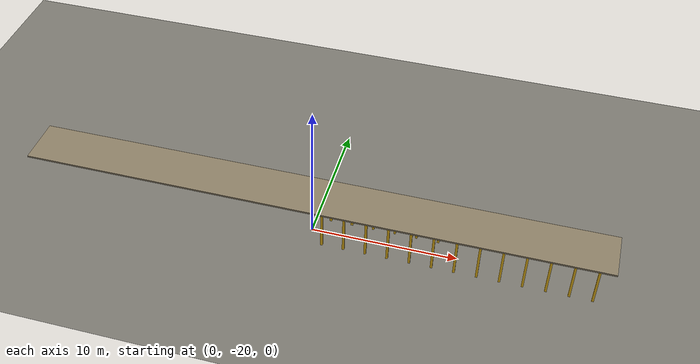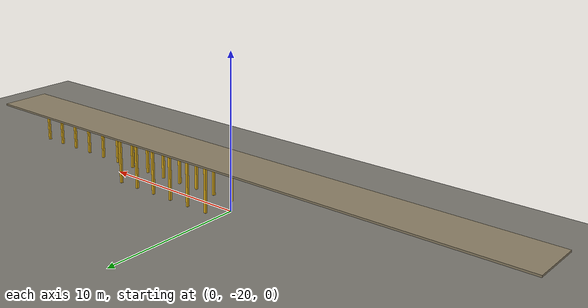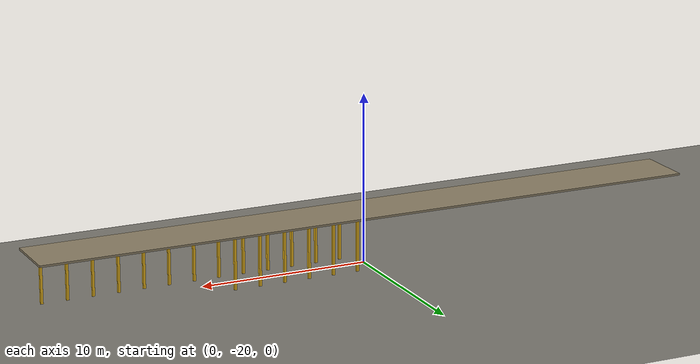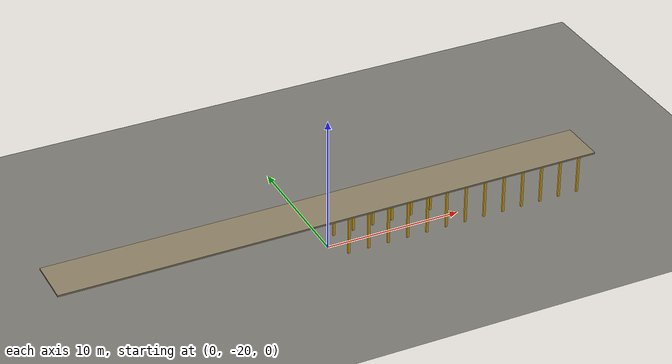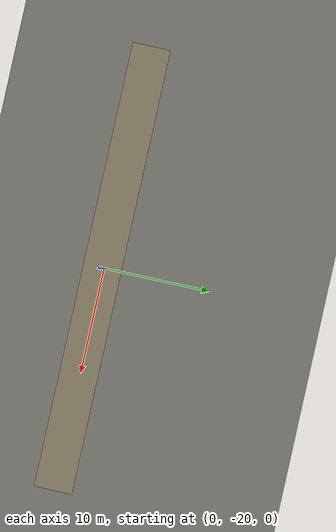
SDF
<sdf version="1.6">
 <world name="w4_structure_decks">
  <model name="ground_plane">
   <static>true</static>
   <link name="link">
    <collision name="collision">
     <geometry><plane><normal>0 0 1</normal><size>300.0 300.0</size></plane></geometry>
    </collision>
    <visual name="visual">
     <geometry><plane><normal>0 0 1</normal><size>300.0 300.0</size></plane></geometry>
     <material>
      <ambient>0.48 0.47 0.44 1</ambient>
      <diffuse>0.48 0.47 0.44 1</diffuse>
      <specular>0.05 0.05 0.05 1</specular>
     </material>
    </visual>
   </link>
  </model>
  <model name="post_14_0">
   <static>true</static>
   <pose>1.0000 -18.8000 1.5500 0 0 0.00000</pose>
   <link name="link">
    <collision name="c"><geometry><box><size>0.1500 0.1500 3.1000</size></box></geometry></collision>
    <visual name="v">
     <geometry><box><size>0.1500 0.1500 3.1000</size></box></geometry>
     <material>
      <ambient>0.900 0.700 0.100 1</ambient>
      <diffuse>0.900 0.700 0.100 1</diffuse>
      <specular>0.1 0.1 0.1 1</specular>
     </material>
    </visual>
   </link>
  </model>
  <model name="post_14_1">
   <static>true</static>
   <pose>1.0000 -21.2000 1.5500 0 0 0.00000</pose>
   <link name="link">
    <collision name="c"><geometry><box><size>0.1500 0.1500 3.1000</size></box></geometry></collision>
    <visual name="v">
     <geometry><box><size>0.1500 0.1500 3.1000</size></box></geometry>
     <material>
      <ambient>0.900 0.700 0.100 1</ambient>
      <diffuse>0.900 0.700 0.100 1</diffuse>
      <specular>0.1 0.1 0.1 1</specular>
     </material>
    </visual>
   </link>
  </model>
  <model name="post_15_0">
   <static>true</static>
   <pose>2.5000 -18.8000 1.5500 0 0 0.00000</pose>
   <link name="link">
    <collision name="c"><geometry><box><size>0.1500 0.1500 3.1000</size></box></geometry></collision>
    <visual name="v">
     <geometry><box><size>0.1500 0.1500 3.1000</size></box></geometry>
     <material>
      <ambient>0.900 0.700 0.100 1</ambient>
      <diffuse>0.900 0.700 0.100 1</diffuse>
      <specular>0.1 0.1 0.1 1</specular>
     </material>
    </visual>
   </link>
  </model>
  <model name="post_15_1">
   <static>true</static>
   <pose>2.5000 -21.2000 1.5500 0 0 0.00000</pose>
   <link name="link">
    <collision name="c"><geometry><box><size>0.1500 0.1500 3.1000</size></box></geometry></collision>
    <visual name="v">
     <geometry><box><size>0.1500 0.1500 3.1000</size></box></geometry>
     <material>
      <ambient>0.900 0.700 0.100 1</ambient>
      <diffuse>0.900 0.700 0.100 1</diffuse>
      <specular>0.1 0.1 0.1 1</specular>
     </material>
    </visual>
   </link>
  </model>
  <model name="post_16_0">
   <static>true</static>
   <pose>4.0000 -18.8000 1.5500 0 0 0.00000</pose>
   <link name="link">
    <collision name="c"><geometry><box><size>0.1500 0.1500 3.1000</size></box></geometry></collision>
    <visual name="v">
     <geometry><box><size>0.1500 0.1500 3.1000</size></box></geometry>
     <material>
      <ambient>0.900 0.700 0.100 1</ambient>
      <diffuse>0.900 0.700 0.100 1</diffuse>
      <specular>0.1 0.1 0.1 1</specular>
     </material>
    </visual>
   </link>
  </model>
  <model name="post_16_1">
   <static>true</static>
   <pose>4.0000 -21.2000 1.5500 0 0 0.00000</pose>
   <link name="link">
    <collision name="c"><geometry><box><size>0.1500 0.1500 3.1000</size></box></geometry></collision>
    <visual name="v">
     <geometry><box><size>0.1500 0.1500 3.1000</size></box></geometry>
     <material>
      <ambient>0.900 0.700 0.100 1</ambient>
      <diffuse>0.900 0.700 0.100 1</diffuse>
      <specular>0.1 0.1 0.1 1</specular>
     </material>
    </visual>
   </link>
  </model>
  <model name="post_17_0">
   <static>true</static>
   <pose>5.5000 -18.8000 1.5500 0 0 0.00000</pose>
   <link name="link">
    <collision name="c"><geometry><box><size>0.1500 0.1500 3.1000</size></box></geometry></collision>
    <visual name="v">
     <geometry><box><size>0.1500 0.1500 3.1000</size></box></geometry>
     <material>
      <ambient>0.900 0.700 0.100 1</ambient>
      <diffuse>0.900 0.700 0.100 1</diffuse>
      <specular>0.1 0.1 0.1 1</specular>
     </material>
    </visual>
   </link>
  </model>
  <model name="post_17_1">
   <static>true</static>
   <pose>5.5000 -21.2000 1.5500 0 0 0.00000</pose>
   <link name="link">
    <collision name="c"><geometry><box><size>0.1500 0.1500 3.1000</size></box></geometry></collision>
    <visual name="v">
     <geometry><box><size>0.1500 0.1500 3.1000</size></box></geometry>
     <material>
      <ambient>0.900 0.700 0.100 1</ambient>
      <diffuse>0.900 0.700 0.100 1</diffuse>
      <specular>0.1 0.1 0.1 1</specular>
     </material>
    </visual>
   </link>
  </model>
  <model name="post_18_0">
   <static>true</static>
   <pose>7.0000 -18.8000 1.5500 0 0 0.00000</pose>
   <link name="link">
    <collision name="c"><geometry><box><size>0.1500 0.1500 3.1000</size></box></geometry></collision>
    <visual name="v">
     <geometry><box><size>0.1500 0.1500 3.1000</size></box></geometry>
     <material>
      <ambient>0.900 0.700 0.100 1</ambient>
      <diffuse>0.900 0.700 0.100 1</diffuse>
      <specular>0.1 0.1 0.1 1</specular>
     </material>
    </visual>
   </link>
  </model>
  <model name="post_18_1">
   <static>true</static>
   <pose>7.0000 -21.2000 1.5500 0 0 0.00000</pose>
   <link name="link">
    <collision name="c"><geometry><box><size>0.1500 0.1500 3.1000</size></box></geometry></collision>
    <visual name="v">
     <geometry><box><size>0.1500 0.1500 3.1000</size></box></geometry>
     <material>
      <ambient>0.900 0.700 0.100 1</ambient>
      <diffuse>0.900 0.700 0.100 1</diffuse>
      <specular>0.1 0.1 0.1 1</specular>
     </material>
    </visual>
   </link>
  </model>
  <model name="post_19_0">
   <static>true</static>
   <pose>8.5000 -18.8000 1.5500 0 0 0.00000</pose>
   <link name="link">
    <collision name="c"><geometry><box><size>0.1500 0.1500 3.1000</size></box></geometry></collision>
    <visual name="v">
     <geometry><box><size>0.1500 0.1500 3.1000</size></box></geometry>
     <material>
      <ambient>0.900 0.700 0.100 1</ambient>
      <diffuse>0.900 0.700 0.100 1</diffuse>
      <specular>0.1 0.1 0.1 1</specular>
     </material>
    </visual>
   </link>
  </model>
  <model name="post_19_1">
   <static>true</static>
   <pose>8.5000 -21.2000 1.5500 0 0 0.00000</pose>
   <link name="link">
    <collision name="c"><geometry><box><size>0.1500 0.1500 3.1000</size></box></geometry></collision>
    <visual name="v">
     <geometry><box><size>0.1500 0.1500 3.1000</size></box></geometry>
     <material>
      <ambient>0.900 0.700 0.100 1</ambient>
      <diffuse>0.900 0.700 0.100 1</diffuse>
      <specular>0.1 0.1 0.1 1</specular>
     </material>
    </visual>
   </link>
  </model>
  <model name="post_20_1">
   <static>true</static>
   <pose>10.0000 -21.2000 1.5500 0 0 0.00000</pose>
   <link name="link">
    <collision name="c"><geometry><box><size>0.1500 0.1500 3.1000</size></box></geometry></collision>
    <visual name="v">
     <geometry><box><size>0.1500 0.1500 3.1000</size></box></geometry>
     <material>
      <ambient>0.900 0.700 0.100 1</ambient>
      <diffuse>0.900 0.700 0.100 1</diffuse>
      <specular>0.1 0.1 0.1 1</specular>
     </material>
    </visual>
   </link>
  </model>
  <model name="post_21_1">
   <static>true</static>
   <pose>11.5000 -21.2000 1.5500 0 0 0.00000</pose>
   <link name="link">
    <collision name="c"><geometry><box><size>0.1500 0.1500 3.1000</size></box></geometry></collision>
    <visual name="v">
     <geometry><box><size>0.1500 0.1500 3.1000</size></box></geometry>
     <material>
      <ambient>0.900 0.700 0.100 1</ambient>
      <diffuse>0.900 0.700 0.100 1</diffuse>
      <specular>0.1 0.1 0.1 1</specular>
     </material>
    </visual>
   </link>
  </model>
  <model name="post_22_1">
   <static>true</static>
   <pose>13.0000 -21.2000 1.5500 0 0 0.00000</pose>
   <link name="link">
    <collision name="c"><geometry><box><size>0.1500 0.1500 3.1000</size></box></geometry></collision>
    <visual name="v">
     <geometry><box><size>0.1500 0.1500 3.1000</size></box></geometry>
     <material>
      <ambient>0.900 0.700 0.100 1</ambient>
      <diffuse>0.900 0.700 0.100 1</diffuse>
      <specular>0.1 0.1 0.1 1</specular>
     </material>
    </visual>
   </link>
  </model>
  <model name="post_23_1">
   <static>true</static>
   <pose>14.5000 -21.2000 1.5500 0 0 0.00000</pose>
   <link name="link">
    <collision name="c"><geometry><box><size>0.1500 0.1500 3.1000</size></box></geometry></collision>
    <visual name="v">
     <geometry><box><size>0.1500 0.1500 3.1000</size></box></geometry>
     <material>
      <ambient>0.900 0.700 0.100 1</ambient>
      <diffuse>0.900 0.700 0.100 1</diffuse>
      <specular>0.1 0.1 0.1 1</specular>
     </material>
    </visual>
   </link>
  </model>
  <model name="post_24_1">
   <static>true</static>
   <pose>16.0000 -21.2000 1.5500 0 0 0.00000</pose>
   <link name="link">
    <collision name="c"><geometry><box><size>0.1500 0.1500 3.1000</size></box></geometry></collision>
    <visual name="v">
     <geometry><box><size>0.1500 0.1500 3.1000</size></box></geometry>
     <material>
      <ambient>0.900 0.700 0.100 1</ambient>
      <diffuse>0.900 0.700 0.100 1</diffuse>
      <specular>0.1 0.1 0.1 1</specular>
     </material>
    </visual>
   </link>
  </model>
  <model name="post_25_1">
   <static>true</static>
   <pose>17.5000 -21.2000 1.5500 0 0 0.00000</pose>
   <link name="link">
    <collision name="c"><geometry><box><size>0.1500 0.1500 3.1000</size></box></geometry></collision>
    <visual name="v">
     <geometry><box><size>0.1500 0.1500 3.1000</size></box></geometry>
     <material>
      <ambient>0.900 0.700 0.100 1</ambient>
      <diffuse>0.900 0.700 0.100 1</diffuse>
      <specular>0.1 0.1 0.1 1</specular>
     </material>
    </visual>
   </link>
  </model>
  <model name="post_26_1">
   <static>true</static>
   <pose>19.0000 -21.2000 1.5500 0 0 0.00000</pose>
   <link name="link">
    <collision name="c"><geometry><box><size>0.1500 0.1500 3.1000</size></box></geometry></collision>
    <visual name="v">
     <geometry><box><size>0.1500 0.1500 3.1000</size></box></geometry>
     <material>
      <ambient>0.900 0.700 0.100 1</ambient>
      <diffuse>0.900 0.700 0.100 1</diffuse>
      <specular>0.1 0.1 0.1 1</specular>
     </material>
    </visual>
   </link>
  </model>
  <model name="walk_roof">
   <static>true</static>
   <pose>0.0000 -20.0000 3.1600 0 0 0.00000</pose>
   <link name="link">
    <collision name="c"><geometry><box><size>40.0000 3.4000 0.1200</size></box></geometry></collision>
    <visual name="v">
     <geometry><box><size>40.0000 3.4000 0.1200</size></box></geometry>
     <material>
      <ambient>0.550 0.500 0.400 1</ambient>
      <diffuse>0.550 0.500 0.400 1</diffuse>
      <specular>0.1 0.1 0.1 1</specular>
     </material>
    </visual>
   </link>
  </model>
 </world>
</sdf>
